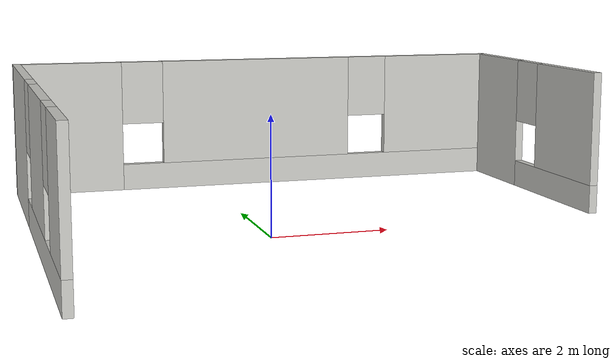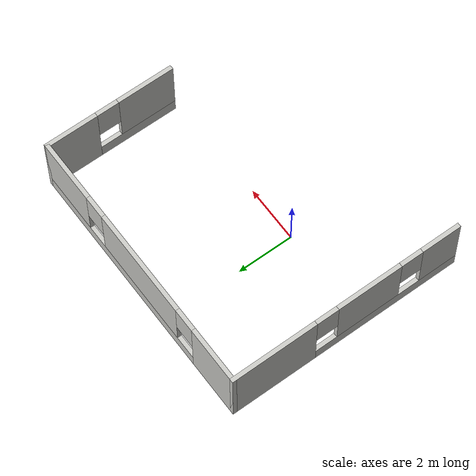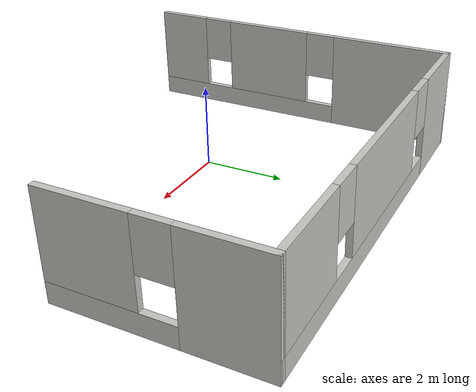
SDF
<?xml version='1.0'?>
<sdf version='1.7'>
  <model name='Untitled'>
    <pose>1.18 0.705 0 0 -0 0</pose>
    <link name='Wall_0'>
      <pose>0 4.175 0 0 -0 0</pose>
      <visual name='Wall_0_Visual_0'>
        <pose>-3.85471 0 1.25 0 -0 0</pose>
        <geometry>
          <box>
            <size>2.04058 0.15 2.5</size>
          </box>
        </geometry>
        <material>
          <script>
            <uri>file://media/materials/scripts/gazebo.material</uri>
            <name>Gazebo/CeilingTiled</name>
          </script>
          <ambient>1 1 1 1</ambient>
        </material>
        <meta>
          <layer>0</layer>
        </meta>
      </visual>
      <collision name='Wall_0_Collision_0'>
        <geometry>
          <box>
            <size>2.04058 0.15 2.5</size>
          </box>
        </geometry>
        <pose>-3.85471 0 1.25 0 -0 0</pose>
      </collision>
      <visual name='Wall_0_Visual_1'>
        <pose>1.02029 0 0.25 0 -0 0</pose>
        <geometry>
          <box>
            <size>7.70943 0.15 0.5</size>
          </box>
        </geometry>
        <material>
          <script>
            <uri>file://media/materials/scripts/gazebo.material</uri>
            <name>Gazebo/CeilingTiled</name>
          </script>
          <ambient>1 1 1 1</ambient>
        </material>
        <meta>
          <layer>0</layer>
        </meta>
      </visual>
      <collision name='Wall_0_Collision_1'>
        <geometry>
          <box>
            <size>7.70943 0.15 0.5</size>
          </box>
        </geometry>
        <pose>1.02029 0 0.25 0 -0 0</pose>
      </collision>
      <visual name='Wall_0_Visual_2'>
        <pose>-0.12005 0 1.5 0 -0 0</pose>
        <geometry>
          <box>
            <size>3.82875 0.15 2</size>
          </box>
        </geometry>
        <material>
          <script>
            <uri>file://media/materials/scripts/gazebo.material</uri>
            <name>Gazebo/CeilingTiled</name>
          </script>
          <ambient>1 1 1 1</ambient>
        </material>
        <meta>
          <layer>0</layer>
        </meta>
      </visual>
      <collision name='Wall_0_Collision_2'>
        <geometry>
          <box>
            <size>3.82875 0.15 2</size>
          </box>
        </geometry>
        <pose>-0.12005 0 1.5 0 -0 0</pose>
      </collision>
      <visual name='Wall_0_Visual_3'>
        <pose>3.73466 0 1.5 0 -0 0</pose>
        <geometry>
          <box>
            <size>2.28068 0.15 2</size>
          </box>
        </geometry>
        <material>
          <script>
            <uri>file://media/materials/scripts/gazebo.material</uri>
            <name>Gazebo/CeilingTiled</name>
          </script>
          <ambient>1 1 1 1</ambient>
        </material>
        <meta>
          <layer>0</layer>
        </meta>
      </visual>
      <collision name='Wall_0_Collision_3'>
        <geometry>
          <box>
            <size>2.28068 0.15 2</size>
          </box>
        </geometry>
        <pose>3.73466 0 1.5 0 -0 0</pose>
      </collision>
      <visual name='Wall_0_Visual_4'>
        <pose>-2.43443 0 1.9 0 -0 0</pose>
        <geometry>
          <box>
            <size>0.8 0.15 1.2</size>
          </box>
        </geometry>
        <material>
          <script>
            <uri>file://media/materials/scripts/gazebo.material</uri>
            <name>Gazebo/CeilingTiled</name>
          </script>
          <ambient>1 1 1 1</ambient>
        </material>
        <meta>
          <layer>0</layer>
        </meta>
      </visual>
      <collision name='Wall_0_Collision_4'>
        <geometry>
          <box>
            <size>0.8 0.15 1.2</size>
          </box>
        </geometry>
        <pose>-2.43443 0 1.9 0 -0 0</pose>
      </collision>
      <visual name='Wall_0_Visual_5'>
        <pose>2.19433 0 1.9 0 -0 0</pose>
        <geometry>
          <box>
            <size>0.8 0.15 1.2</size>
          </box>
        </geometry>
        <material>
          <script>
            <uri>file://media/materials/scripts/gazebo.material</uri>
            <name>Gazebo/CeilingTiled</name>
          </script>
          <ambient>1 1 1 1</ambient>
        </material>
        <meta>
          <layer>0</layer>
        </meta>
      </visual>
      <collision name='Wall_0_Collision_5'>
        <geometry>
          <box>
            <size>0.8 0.15 1.2</size>
          </box>
        </geometry>
        <pose>2.19433 0 1.9 0 -0 0</pose>
      </collision>
    </link>
    <link name='Wall_3'>
      <pose>4.8 1.875 0 0 -0 -1.5708</pose>
      <visual name='Wall_3_Visual_0'>
        <pose>-1.42854 0 1.25 0 -0 0</pose>
        <geometry>
          <box>
            <size>1.89292 0.15 2.5</size>
          </box>
        </geometry>
        <material>
          <script>
            <uri>file://media/materials/scripts/gazebo.material</uri>
            <name>Gazebo/CeilingTiled</name>
          </script>
          <ambient>1 1 1 1</ambient>
        </material>
        <meta>
          <layer>0</layer>
        </meta>
      </visual>
      <collision name='Wall_3_Collision_0'>
        <geometry>
          <box>
            <size>1.89292 0.15 2.5</size>
          </box>
        </geometry>
        <pose>-1.42854 0 1.25 0 -0 0</pose>
      </collision>
      <visual name='Wall_3_Visual_1'>
        <pose>0.946462 0 0.25 0 -0 0</pose>
        <geometry>
          <box>
            <size>2.85708 0.15 0.5</size>
          </box>
        </geometry>
        <material>
          <script>
            <uri>file://media/materials/scripts/gazebo.material</uri>
            <name>Gazebo/CeilingTiled</name>
          </script>
          <ambient>1 1 1 1</ambient>
        </material>
        <meta>
          <layer>0</layer>
        </meta>
      </visual>
      <collision name='Wall_3_Collision_1'>
        <geometry>
          <box>
            <size>2.85708 0.15 0.5</size>
          </box>
        </geometry>
        <pose>0.946462 0 0.25 0 -0 0</pose>
      </collision>
      <visual name='Wall_3_Visual_2'>
        <pose>1.34646 0 1.5 0 -0 0</pose>
        <geometry>
          <box>
            <size>2.05708 0.15 2</size>
          </box>
        </geometry>
        <material>
          <script>
            <uri>file://media/materials/scripts/gazebo.material</uri>
            <name>Gazebo/CeilingTiled</name>
          </script>
          <ambient>1 1 1 1</ambient>
        </material>
        <meta>
          <layer>0</layer>
        </meta>
      </visual>
      <collision name='Wall_3_Collision_2'>
        <geometry>
          <box>
            <size>2.05708 0.15 2</size>
          </box>
        </geometry>
        <pose>1.34646 0 1.5 0 -0 0</pose>
      </collision>
      <visual name='Wall_3_Visual_3'>
        <pose>-0.082075 0 1.9 0 -0 0</pose>
        <geometry>
          <box>
            <size>0.8 0.15 1.2</size>
          </box>
        </geometry>
        <material>
          <script>
            <uri>file://media/materials/scripts/gazebo.material</uri>
            <name>Gazebo/CeilingTiled</name>
          </script>
          <ambient>1 1 1 1</ambient>
        </material>
        <meta>
          <layer>0</layer>
        </meta>
      </visual>
      <collision name='Wall_3_Collision_3'>
        <geometry>
          <box>
            <size>0.8 0.15 1.2</size>
          </box>
        </geometry>
        <pose>-0.082075 0 1.9 0 -0 0</pose>
      </collision>
    </link>
    <link name='Wall_5'>
      <pose>-4.8 0 0 0 -0 -1.5708</pose>
      <visual name='Wall_5_Visual_0'>
        <pose>-2.7018 0 1.25 0 -0 0</pose>
        <geometry>
          <box>
            <size>3.0964 0.15 2.5</size>
          </box>
        </geometry>
        <material>
          <script>
            <uri>file://media/materials/scripts/gazebo.material</uri>
            <name>Gazebo/CeilingTiled</name>
          </script>
          <ambient>1 1 1 1</ambient>
        </material>
        <meta>
          <layer>0</layer>
        </meta>
      </visual>
      <collision name='Wall_5_Collision_0'>
        <geometry>
          <box>
            <size>3.0964 0.15 2.5</size>
          </box>
        </geometry>
        <pose>-2.7018 0 1.25 0 -0 0</pose>
      </collision>
      <visual name='Wall_5_Visual_1'>
        <pose>1.5482 0 0.25 0 -0 0</pose>
        <geometry>
          <box>
            <size>5.4036 0.15 0.5</size>
          </box>
        </geometry>
        <material>
          <script>
            <uri>file://media/materials/scripts/gazebo.material</uri>
            <name>Gazebo/CeilingTiled</name>
          </script>
          <ambient>1 1 1 1</ambient>
        </material>
        <meta>
          <layer>0</layer>
        </meta>
      </visual>
      <collision name='Wall_5_Collision_1'>
        <geometry>
          <box>
            <size>5.4036 0.15 0.5</size>
          </box>
        </geometry>
        <pose>1.5482 0 0.25 0 -0 0</pose>
      </collision>
      <visual name='Wall_5_Visual_2'>
        <pose>0.826787 0 1.5 0 -0 0</pose>
        <geometry>
          <box>
            <size>2.36077 0.15 2</size>
          </box>
        </geometry>
        <material>
          <script>
            <uri>file://media/materials/scripts/gazebo.material</uri>
            <name>Gazebo/CeilingTiled</name>
          </script>
          <ambient>1 1 1 1</ambient>
        </material>
        <meta>
          <layer>0</layer>
        </meta>
      </visual>
      <collision name='Wall_5_Collision_2'>
        <geometry>
          <box>
            <size>2.36077 0.15 2</size>
          </box>
        </geometry>
        <pose>0.826787 0 1.5 0 -0 0</pose>
      </collision>
      <visual name='Wall_5_Visual_3'>
        <pose>3.52859 0 1.5 0 -0 0</pose>
        <geometry>
          <box>
            <size>1.44283 0.15 2</size>
          </box>
        </geometry>
        <material>
          <script>
            <uri>file://media/materials/scripts/gazebo.material</uri>
            <name>Gazebo/CeilingTiled</name>
          </script>
          <ambient>1 1 1 1</ambient>
        </material>
        <meta>
          <layer>0</layer>
        </meta>
      </visual>
      <collision name='Wall_5_Collision_3'>
        <geometry>
          <box>
            <size>1.44283 0.15 2</size>
          </box>
        </geometry>
        <pose>3.52859 0 1.5 0 -0 0</pose>
      </collision>
      <visual name='Wall_5_Visual_4'>
        <pose>-0.7536 0 1.9 0 -0 0</pose>
        <geometry>
          <box>
            <size>0.8 0.15 1.2</size>
          </box>
        </geometry>
        <material>
          <script>
            <uri>file://media/materials/scripts/gazebo.material</uri>
            <name>Gazebo/CeilingTiled</name>
          </script>
          <ambient>1 1 1 1</ambient>
        </material>
        <meta>
          <layer>0</layer>
        </meta>
      </visual>
      <collision name='Wall_5_Collision_4'>
        <geometry>
          <box>
            <size>0.8 0.15 1.2</size>
          </box>
        </geometry>
        <pose>-0.7536 0 1.9 0 -0 0</pose>
      </collision>
      <visual name='Wall_5_Visual_5'>
        <pose>2.40718 0 1.9 0 -0 0</pose>
        <geometry>
          <box>
            <size>0.8 0.15 1.2</size>
          </box>
        </geometry>
        <material>
          <script>
            <uri>file://media/materials/scripts/gazebo.material</uri>
            <name>Gazebo/CeilingTiled</name>
          </script>
          <ambient>1 1 1 1</ambient>
        </material>
        <meta>
          <layer>0</layer>
        </meta>
      </visual>
      <collision name='Wall_5_Collision_5'>
        <geometry>
          <box>
            <size>0.8 0.15 1.2</size>
          </box>
        </geometry>
        <pose>2.40718 0 1.9 0 -0 0</pose>
      </collision>
    </link>
    <static>1</static>
  </model>
</sdf>
